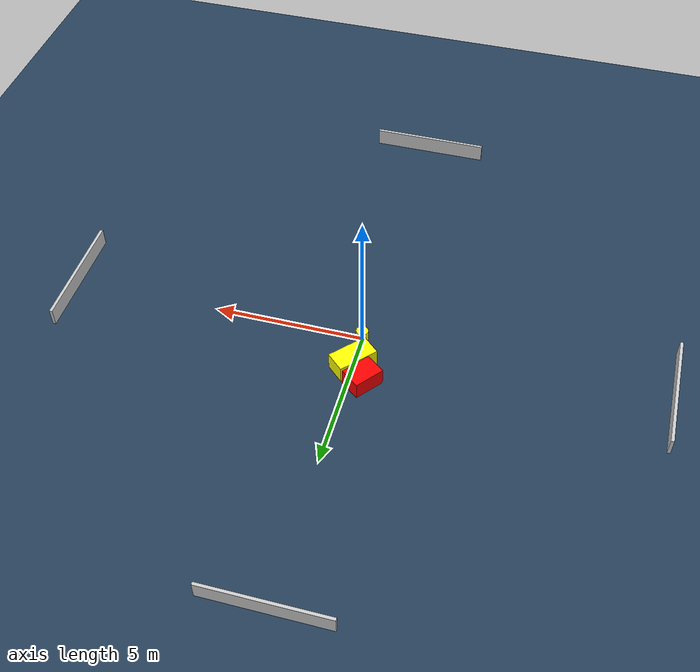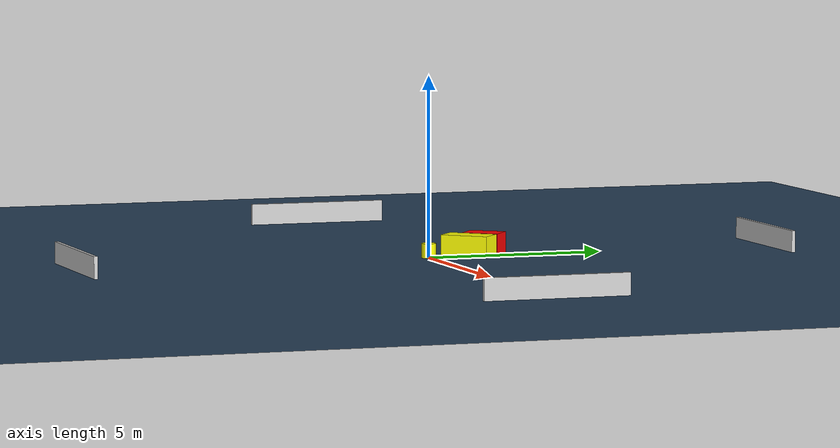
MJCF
<?xml version="1.0" ?>
<mujoco model="generated_environment">
  <option timestep="0.01" integrator="RK4" cone="elliptic"/>
  <default>
    <geom density="1"/>
  </default>
  <asset>
    <texture builtin="gradient" height="3072" name="skybox" rgb1="0.3 0.5 0.7" rgb2="0 0 0" type="skybox" width="512"/>
    <texture builtin="checker" height="300" name="groundplane" rgb1="0.2 0.3 0.4" rgb2="0.1 0.2 0.3" type="2d" width="300"/>
    <material name="groundplane" reflectance="0.2" texrepeat="5 5" texture="groundplane"/>
  </asset>
  <worldbody>
    <light dir="0 0 -1" directional="true" pos="0 0 1.5"/>
    <geom condim="3" friction="0.5 0.005 0.001" material="groundplane" name="floor" pos="0 0 0" size="0 0 0.05" type="plane"/>
    <body name="walls">
      <geom name="wall_1" condim="4" pos="-10.0 0.0 0.3" rgba="0.800000011920929 0.800000011920929 0.800000011920929 1.0" size="0.05 2.0 0.3" type="box"/>
      <geom name="wall_2" condim="4" pos="10.0 0.0 0.3" rgba="0.800000011920929 0.800000011920929 0.800000011920929 1.0" size="0.05 2.0 0.3" type="box"/>
      <geom name="wall_3" condim="4" pos="0.0 -10.0 0.3" rgba="0.800000011920929 0.800000011920929 0.800000011920929 1.0" size="2.0 0.05 0.3" type="box"/>
      <geom name="wall_4" condim="4" pos="0.0 10.0 0.3" rgba="0.800000011920929 0.800000011920929 0.800000011920929 1.0" size="2.0 0.05 0.3" type="box"/>
    </body>
    <body name="robot">
      <joint name="joint_x" type="slide" pos="0 0 0" axis="1 0 0"/>
      <joint name="joint_y" type="slide" pos="0 0 0" axis="0 1 0"/>
      <geom name="robot" type="cylinder" pos="0.0 0.0 0.2" size="0.2 0.2 0.0" mass="5.0" friction="1.0 0.005 0.0001" condim="4" rgba="1.0 1.0 0.0 1.0"/>
    </body>
    <body name="obstacle_1_movable">
      <geom name="obstacle_1_movable" condim="4" pos="-0.0019463797960842053 1.1594013710249627 0.3" euler="0 0 47.76920740484781" friction="0.0 0.005 0.001" rgba="1.0 1.0 0.0 1.0" size="0.6797318225875759 0.3599785150647016 0.3" type="box" mass="0.1"/>
      <joint type="free"/>
    </body>
    <body name="obstacle_2_static">
      <geom name="obstacle_2_static" condim="4" pos="-0.4857720844780316 1.7810268387836314 0.3" euler="0 0 321.6374668429817" friction="0.0 0.005 0.001" rgba="1.0 0.0 0.0 1.0" size="0.3684195344075707 0.5114871358779585 0.3" type="box"/>
    </body>
  </worldbody>
  <actuator>
    <motor name="actuator_x" joint="joint_x" gear="1" ctrlrange="-1 1"/>
    <motor name="actuator_y" joint="joint_y" gear="1" ctrlrange="-1 1"/>
  </actuator>
</mujoco>
